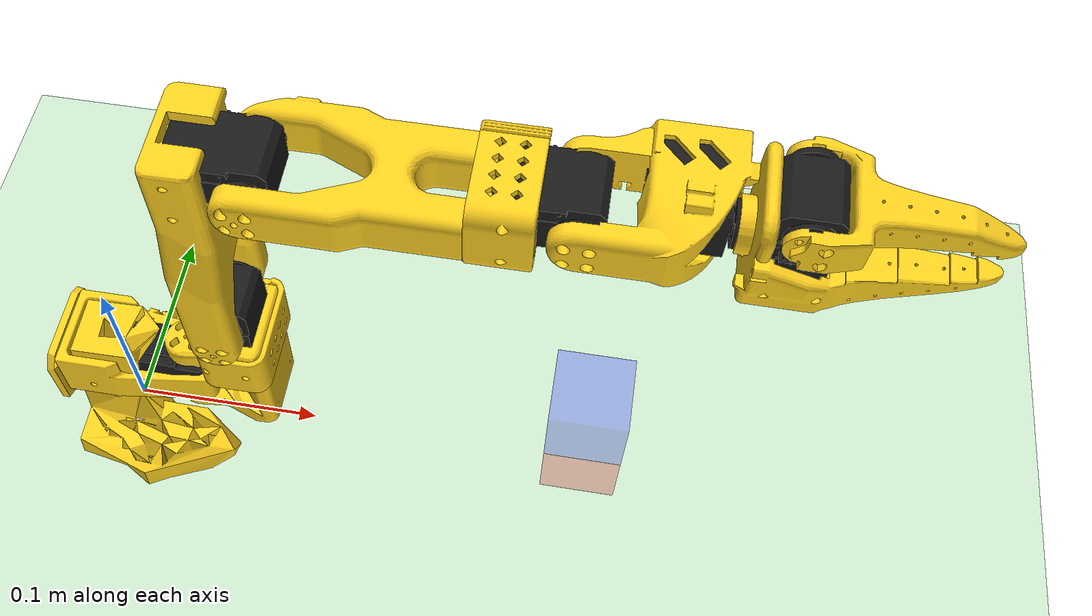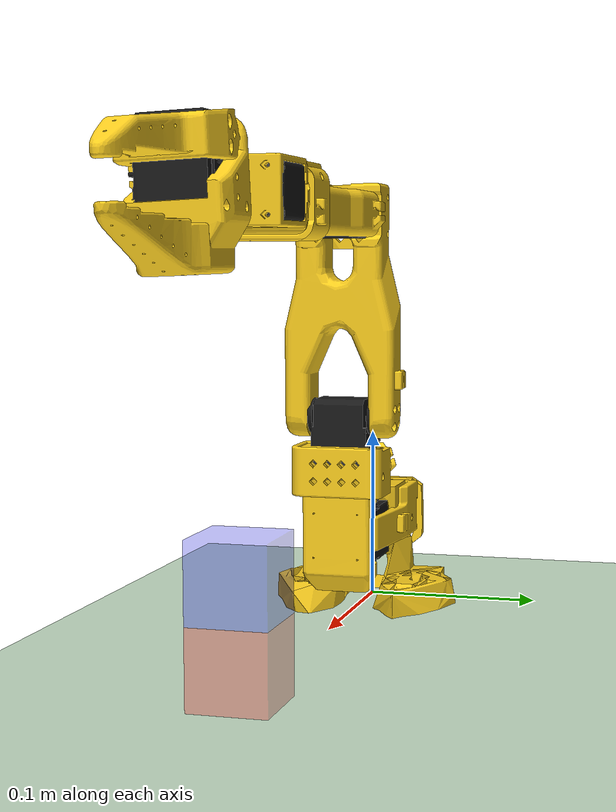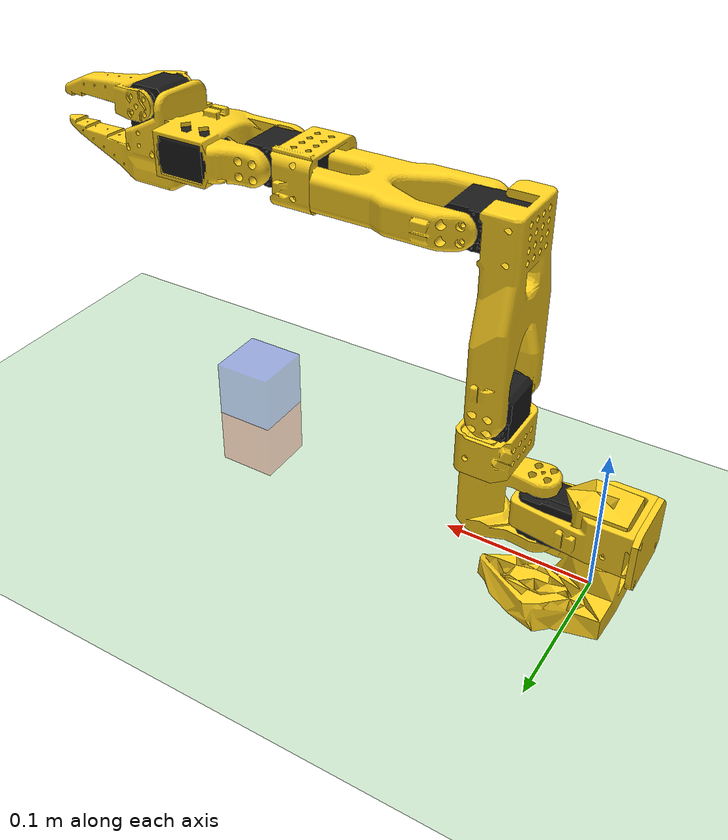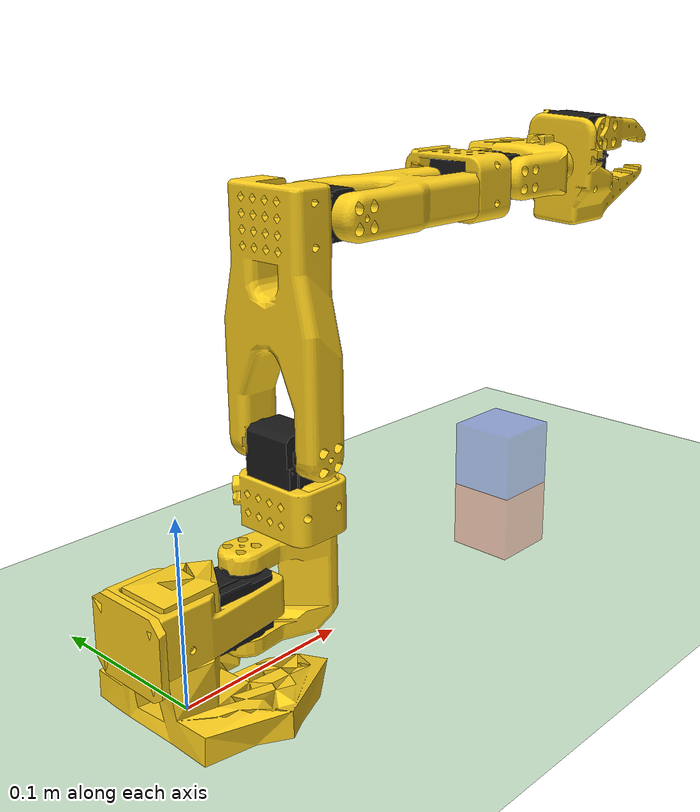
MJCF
<?xml version="1.0" ?>
<mujoco model="so101_block_stacking">
  <compiler angle="radian" meshdir="assets" autolimits="true"/>
  <default>
    <default class="so101_new_calib">
      <joint damping="1" frictionloss="0.1" armature="0.005"/>
      <position kp="50"/>
      <default class="visual">
        <geom type="mesh" contype="0" conaffinity="0" group="2"/>
      </default>
      <default class="collision">
        <geom group="3" condim="4" friction="1 0.05 0.01"/>
      </default>
    </default>
  </default>

  <default>
    <default class="sts3215">
      <geom contype="0" conaffinity="0"/>
      <joint damping="0.40" frictionloss="0.052" armature="0.028"/>
      <position kp="120" kv="3.5" forcerange="-3.35 3.35"/>
    </default>
    <default class="backlash">
      <joint damping="0.01" frictionloss="0" armature="0.01" limited="true" range="-0.008726646259971648 0.008726646259971648"/>
    </default>
  </default>

  <worldbody>
    <geom name="floor" pos="0 0 0" size="1 1 0.05" type="plane" rgba="0.8 0.9 0.8 1"/>

    <body name="block_red" pos="0.15 0.15 0.02">
      <freejoint name="block_red_joint"/>
      <geom name="block_red_geom" type="box" size="0.02 0.02 0.02" rgba="1 0.1 0.1 1" mass="0.05" condim="4" friction="0.9 0.05 0.02" group="3"/>
      <site name="block_red_site" pos="0 0 0" size="0.005" type="sphere" rgba="0 0 0 0"/>
    </body>

    <body name="block_blue" pos="0.15 -0.15 0.02">
      <freejoint name="block_blue_joint"/>
      <geom name="block_blue_geom" type="box" size="0.02 0.02 0.02" rgba="0.1 0.1 1 1" mass="0.05" condim="4" friction="0.9 0.05 0.02" group="3"/>
      <site name="block_blue_site" pos="0 0 0" size="0.005" type="sphere" rgba="0 0 0 0"/>
    </body>

    <body name="target_stack" pos="0.25 0.0 0.02">
      <geom type="box" size="0.02 0.02 0.02" rgba="1 0.1 0.1 0.3" contype="0" conaffinity="0"/>
      <site name="target_bottom_site" pos="0 0 0" size="0.005" rgba="0 0 0 0"/>

      <geom type="box" pos="0 0 0.04" size="0.02 0.02 0.02" rgba="0.1 0.1 1 0.3" contype="0" conaffinity="0"/>
      <site name="target_top_site" pos="0 0 0.04" size="0.005" rgba="0 0 0 0"/>
    </body>

    <body name="base" pos="0 0 0" quat="1 0 0 0" childclass="so101_new_calib">
      <inertial pos="0.0137179 -5.19711e-05 0.0334843" mass="0.147" fullinertia="0.000114686 0.000136117 0.000130364 -4.59787e-07 4.97151e-06 9.75275e-08"/>
      <geom type="mesh" class="visual" pos="-0.00636471 -9.94414e-05 -0.0024" quat="0.5 0.5 0.5 0.5" mesh="base_motor_holder_so101_v1" material="base_motor_holder_so101_v1_material"/>
      <geom type="mesh" class="visual" pos="-0.00636471 -8.97657e-09 -0.0024" quat="0.5 0.5 0.5 0.5" mesh="base_so101_v2" material="base_so101_v2_material"/>
      <geom type="mesh" class="visual" pos="0.0263353 -8.97657e-09 0.0437" quat="1 -2.85511e-16 -9.64433e-17 6.12908e-16" mesh="sts3215_03a_v1" material="sts3215_03a_v1_material"/>
      <geom type="mesh" class="visual" pos="-0.0309827 -0.000199441 0.0474" quat="0.5 0.5 0.5 0.5" mesh="waveshare_mounting_plate_so101_v2" material="waveshare_mounting_plate_so101_v2_material"/>
      <site group="3" name="baseframe" pos="8.67362e-19 9.55596e-18 3.46945e-18" quat="1 -8.17396e-19 3.78392e-17 2.22045e-16"/>

      <body name="shoulder" pos="0.0388353 -8.97657e-09 0.0624" quat="3.56167e-16 1.22818e-15 -1 -4.14635e-16">
        <joint axis="0 0 1" name="shoulder_pan" type="hinge" range="-1.9198621771937616 1.9198621771937634" class="sts3215"/>
        <inertial pos="-0.0307604 -1.66727e-05 -0.0252713" mass="0.100006" fullinertia="8.3759e-05 8.10403e-05 2.39783e-05 7.55525e-08 -1.16342e-06 1.54663e-07"/>
        <geom type="mesh" class="visual" pos="-0.0303992 0.000422241 -0.0417" quat="0.5 0.5 0.5 -0.5" mesh="sts3215_03a_v1" material="sts3215_03a_v1_material"/>
        <geom type="mesh" class="collision" pos="-0.0303992 0.000422241 -0.0417" quat="0.5 0.5 0.5 -0.5" mesh="sts3215_03a_v1" material="sts3215_03a_v1_material"/>
        <geom type="mesh" class="visual" pos="-0.0675992 -0.000177759 0.0158499" quat="0.5 0.5 -0.5 0.5" mesh="motor_holder_so101_base_v1" material="motor_holder_so101_base_v1_material"/>
        <geom type="mesh" class="collision" pos="-0.0675992 -0.000177759 0.0158499" quat="0.5 0.5 -0.5 0.5" mesh="motor_holder_so101_base_v1" material="motor_holder_so101_base_v1_material"/>
        <geom type="mesh" class="visual" pos="0.0122008 2.22413e-05 0.0464" quat="0.707107 -0.707107 -0 8.3163e-34" mesh="rotation_pitch_so101_v1" material="rotation_pitch_so101_v1_material"/>
        <geom type="mesh" class="collision" pos="0.0122008 2.22413e-05 0.0464" quat="0.707107 -0.707107 -0 8.3163e-34" mesh="rotation_pitch_so101_v1" material="rotation_pitch_so101_v1_material"/>

        <body name="upper_arm" pos="-0.0303992 -0.0182778 -0.0542" quat="0.5 -0.5 -0.5 -0.5">
          <joint axis="0 0 1" name="shoulder_lift" type="hinge" range="-1.7453292519943224 1.7453292519943366" class="sts3215"/>
          <inertial pos="-0.0898471 -0.00838224 0.0184089" mass="0.103" fullinertia="4.08002e-05 0.000147318 0.000142487 -1.97819e-05 -4.03016e-08 8.97326e-09"/>
          <geom type="mesh" class="visual" pos="-0.11257 -0.0155 0.0187" quat="4.56308e-16 -0.707107 0.707107 -1.37383e-16" mesh="sts3215_03a_v1" material="sts3215_03a_v1_material"/>
          <geom type="mesh" class="collision" pos="-0.11257 -0.0155 0.0187" quat="4.56308e-16 -0.707107 0.707107 -1.37383e-16" mesh="sts3215_03a_v1" material="sts3215_03a_v1_material"/>
          <geom type="mesh" class="visual" pos="-0.065085 0.012 0.0182" quat="0 1 0 0" mesh="upper_arm_so101_v1" material="upper_arm_so101_v1_material"/>
          <geom type="mesh" class="collision" pos="-0.065085 0.012 0.0182" quat="0 1 0 0" mesh="upper_arm_so101_v1" material="upper_arm_so101_v1_material"/>

          <body name="lower_arm" pos="-0.11257 -0.028 1.73763e-16" quat="0.707107 -5.98613e-17 -2.58051e-17 0.707107">
            <joint axis="0 0 1" name="elbow_flex" type="hinge" range="-1.69 1.69" class="sts3215"/>
            <inertial pos="-0.0980701 0.00324376 0.0182831" mass="0.104" fullinertia="2.87438e-05 0.000159844 0.00014529 7.41152e-06 1.26409e-06 -4.90188e-08"/>
            <geom type="mesh" class="visual" pos="-0.0648499 -0.032 0.0182" quat="0 1 0 0" mesh="under_arm_so101_v1" material="under_arm_so101_v1_material"/>
            <geom type="mesh" class="collision" pos="-0.0648499 -0.032 0.0182" quat="0 1 0 0" mesh="under_arm_so101_v1" material="under_arm_so101_v1_material"/>
            <geom type="mesh" class="visual" pos="-0.0648499 -0.032 0.018" quat="3.92687e-16 -1 -1.9186e-15 -6.38378e-16" mesh="motor_holder_so101_wrist_v1" material="motor_holder_so101_wrist_v1_material"/>
            <geom type="mesh" class="collision" pos="-0.0648499 -0.032 0.018" quat="3.92687e-16 -1 -1.9186e-15 -6.38378e-16" mesh="motor_holder_so101_wrist_v1" material="motor_holder_so101_wrist_v1_material"/>
            <geom type="mesh" class="visual" pos="-0.1224 0.0052 0.0187" quat="7.21645e-16 1.56949e-15 1 -3.33067e-16" mesh="sts3215_03a_v1" material="sts3215_03a_v1_material"/>
            <geom type="mesh" class="collision" pos="-0.1224 0.0052 0.0187" quat="7.21645e-16 1.56949e-15 1 -3.33067e-16" mesh="sts3215_03a_v1" material="sts3215_03a_v1_material"/>

            <body name="wrist" pos="-0.1349 0.0052 3.62355e-17" quat="0.707107 9.58722e-16 -7.51313e-16 -0.707107">
              <joint axis="0 0 1" name="wrist_flex" type="hinge" range="-1.6580628494556928 1.6580627293335335" class="sts3215"/>
              <inertial pos="-0.000103312 -0.0386143 0.0281156" mass="0.079" fullinertia="3.68263e-05 2.5391e-05 2.1e-05 1.7893e-08 -5.28128e-08 3.6412e-06"/>
              <geom type="mesh" class="visual" pos="8.32667e-17 -0.0424 0.0306" quat="0.5 0.5 0.5 -0.5" mesh="sts3215_03a_no_horn_v1" material="sts3215_03a_no_horn_v1_material"/>
              <geom type="mesh" class="collision" pos="8.32667e-17 -0.0424 0.0306" quat="0.5 0.5 0.5 -0.5" mesh="sts3215_03a_no_horn_v1" material="sts3215_03a_no_horn_v1_material"/>
              <geom type="mesh" class="visual" pos="0 -0.028 0.0181" quat="0.5 -0.5 -0.5 -0.5" mesh="wrist_roll_pitch_so101_v2" material="wrist_roll_pitch_so101_v2_material"/>
              <geom type="mesh" class="collision" pos="0 -0.028 0.0181" quat="0.5 -0.5 -0.5 -0.5" mesh="wrist_roll_pitch_so101_v2" material="wrist_roll_pitch_so101_v2_material"/>

              <body name="gripper" pos="5.55112e-17 -0.0611 0.0181" quat="0.0172091 -0.0172091 0.706897 0.706897">
                <joint axis="0 0 1" name="wrist_roll" type="hinge" range="-2.7438472969992493 2.841206309382605" class="sts3215"/>
                <camera name="gripper_camera" mode="fixed" pos="0 0.06 -0.02" xyaxes="1 0 0 0 0.866 -0.5" fovy="60" />
                <inertial pos="0.000213627 0.000245138 -0.025187" mass="0.087" fullinertia="2.75087e-05 4.33657e-05 3.45059e-05 -3.35241e-07 -5.7352e-06 -5.17847e-08"/>
                <geom type="mesh" class="visual" pos="0.0077 0.0001 -0.0234" quat="0.707107 -0.707107 1.66015e-15 6.45094e-15" mesh="sts3215_03a_v1" material="sts3215_03a_v1_material"/>
                <geom type="mesh" class="collision" pos="0.0077 0.0001 -0.0234" quat="0.707107 -0.707107 1.66015e-15 6.45094e-15" mesh="sts3215_03a_v1" material="sts3215_03a_v1_material"/>
                <geom type="mesh" class="visual" pos="8.32667e-17 -0.000218214 0.000949706" quat="0 1 0 0" mesh="wrist_roll_follower_so101_v1" material="wrist_roll_follower_so101_v1_material"/>
                <geom type="mesh" class="collision" pos="8.32667e-17 -0.000218214 0.000949706" quat="0 1 0 0" mesh="wrist_roll_follower_so101_v1" material="wrist_roll_follower_so101_v1_material"/>
                <site group="3" name="gripperframe" pos="-0.0079 -0.000218121 -0.0981274" quat="0.707107 -0 0.707107 -2.37788e-17" size="0.01" rgba="0 1 0 1"/>

                <body name="moving_jaw_so101_v1" pos="0.0202 0.0188 -0.0234" quat="0.707107 0.707107 -1.85362e-08 1.85362e-08">
                  <joint axis="0 0 1" name="gripper" type="hinge" range="-0.17453297762778586 1.7453291995659765" class="sts3215"/>
                  <inertial pos="-0.00157495 -0.0300244 0.0192755" mass="0.012" fullinertia="6.61427e-06 1.89032e-06 5.28738e-06 -3.19807e-07 -5.90717e-09 -1.09945e-07"/>
                  <geom type="mesh" class="visual" pos="-5.55112e-17 -5.55112e-17 0.0189" quat="1 -0 3.00524e-16 -2.00834e-17" mesh="moving_jaw_so101_v1" material="moving_jaw_so101_v1_material"/>
                  <geom type="mesh" class="collision" pos="-5.55112e-17 -5.55112e-17 0.0189" quat="1 -0 3.00524e-16 -2.00834e-17" mesh="moving_jaw_so101_v1" material="moving_jaw_so101_v1_material"/>
                </body>
              </body>
            </body>
          </body>
        </body>
      </body>
    </body>
  </worldbody>

  <asset>
    <mesh file="waveshare_mounting_plate_so101_v2.stl"/>
    <mesh file="sts3215_03a_v1.stl"/>
    <mesh file="motor_holder_so101_base_v1.stl"/>
    <mesh file="wrist_roll_follower_so101_v1.stl"/>
    <mesh file="moving_jaw_so101_v1.stl"/>
    <mesh file="base_motor_holder_so101_v1.stl"/>
    <mesh file="upper_arm_so101_v1.stl"/>
    <mesh file="wrist_roll_pitch_so101_v2.stl"/>
    <mesh file="under_arm_so101_v1.stl"/>
    <mesh file="rotation_pitch_so101_v1.stl"/>
    <mesh file="motor_holder_so101_wrist_v1.stl"/>
    <mesh file="sts3215_03a_no_horn_v1.stl"/>
    <mesh file="base_so101_v2.stl"/>
    <material name="base_motor_holder_so101_v1_material" rgba="1 0.82 0.12 1"/>
    <material name="base_so101_v2_material" rgba="1 0.82 0.12 1"/>
    <material name="sts3215_03a_v1_material" rgba="0.1 0.1 0.1 1"/>
    <material name="waveshare_mounting_plate_so101_v2_material" rgba="1 0.82 0.12 1"/>
    <material name="motor_holder_so101_base_v1_material" rgba="1 0.82 0.12 1"/>
    <material name="rotation_pitch_so101_v1_material" rgba="1 0.82 0.12 1"/>
    <material name="upper_arm_so101_v1_material" rgba="1 0.82 0.12 1"/>
    <material name="under_arm_so101_v1_material" rgba="1 0.82 0.12 1"/>
    <material name="motor_holder_so101_wrist_v1_material" rgba="1 0.82 0.12 1"/>
    <material name="sts3215_03a_no_horn_v1_material" rgba="0.1 0.1 0.1 1.0"/>
    <material name="wrist_roll_pitch_so101_v2_material" rgba="1 0.82 0.12 1"/>
    <material name="wrist_roll_follower_so101_v1_material" rgba="1 0.82 0.12 1"/>
    <material name="moving_jaw_so101_v1_material" rgba="1 0.82 0.12 1"/>
  </asset>

  <actuator>
    <position class="sts3215" name="shoulder_pan" joint="shoulder_pan" forcerange="-3.35 3.35" ctrlrange="-1.90 1.90"/>
    <position class="sts3215" name="shoulder_lift" joint="shoulder_lift" forcerange="-3.35 3.35" ctrlrange="-1.72 1.72"/>
    <position class="sts3215" name="elbow_flex" joint="elbow_flex" forcerange="-3.35 3.35" ctrlrange="-1.66 1.66"/>
    <position class="sts3215" name="wrist_flex" joint="wrist_flex" forcerange="-3.35 3.35" ctrlrange="-1.63 1.63"/>
    <position class="sts3215" name="wrist_roll" joint="wrist_roll" forcerange="-3.35 3.35" ctrlrange="-2.72 2.82"/>
    <position class="sts3215" name="gripper" joint="gripper" forcerange="-3.35 3.35" ctrlrange="-0.15 1.72"/>
  </actuator>
  <equality/>
</mujoco>
